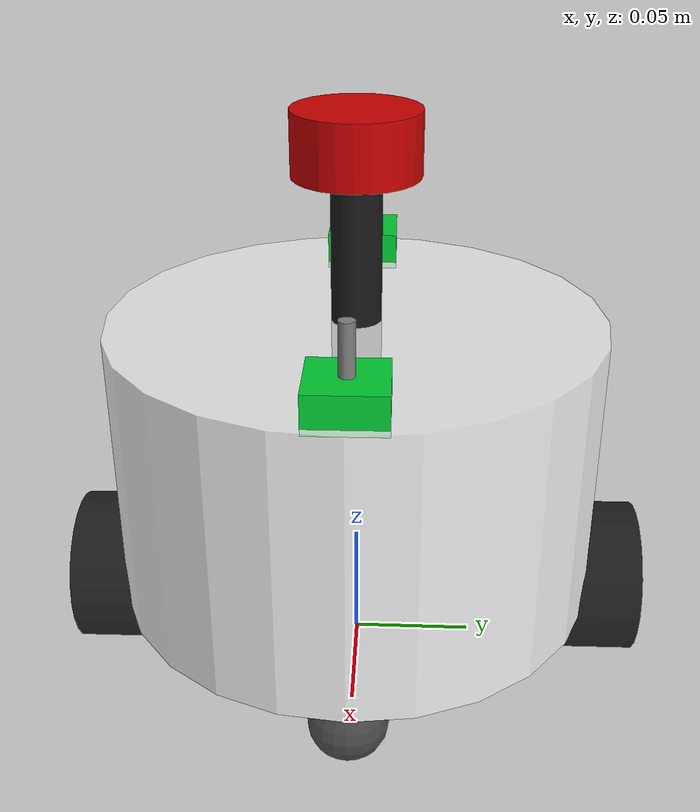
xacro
<?xml version="1.0"?>
<robot xmlns:xacro="http://www.ros.org/wiki/xacro" name="explorer_robot">

    <!-- Arguments for multi-robot support -->
    <xacro:arg name="robot_name" default="robot1"/>
    <xacro:arg name="robot_namespace" default="/robot1"/>

    <xacro:property name="robot_name" value="$(arg robot_name)"/>
    <xacro:property name="robot_namespace" value="$(arg robot_namespace)"/>
    <xacro:property name="prefix" value="${robot_name}/"/>

    <!-- Include all component xacros -->
    <xacro:include filename="$(find robot_description)/urdf/base.urdf.xacro"/>
    <xacro:include filename="$(find robot_description)/urdf/actuator/wheel.urdf.xacro"/>
    <xacro:include filename="$(find robot_description)/urdf/actuator/caster.urdf.xacro"/>
    <xacro:include filename="$(find robot_description)/urdf/sensor/imu.urdf.xacro"/>
    <xacro:include filename="$(find robot_description)/urdf/sensor/laser.urdf.xacro"/>
    <xacro:include filename="$(find robot_description)/urdf/sensor/uwb.urdf.xacro"/>
    <xacro:include filename="$(find robot_description)/urdf/plugins/gazebo_sensor_plugin.xacro"/>
    <xacro:include filename="$(find robot_description)/urdf/plugins/gazebo_control_plugin.xacro"/>

    <!-- Robot Base (cylinder body) -->
    <xacro:base_xacro prefix="${prefix}" length="0.12" radius="0.10"/>

    <!-- Drive Wheels -->
    <xacro:wheel_xacro prefix="${prefix}" wheel_name="left_wheel" xyz="0 0.10 -0.06"/>
    <xacro:wheel_xacro prefix="${prefix}" wheel_name="right_wheel" xyz="0 -0.10 -0.06"/>

    <!-- Caster Wheels -->
    <xacro:caster_xacro prefix="${prefix}" caster_name="front_caster" xyz="0.08 0.0 -0.076"/>
    <xacro:caster_xacro prefix="${prefix}" caster_name="back_caster" xyz="-0.08 0.0 -0.076"/>

    <!-- Sensors -->
    <xacro:imu_xacro prefix="${prefix}" xyz="0.0 0.0 0.02"/>
    <xacro:laser_xacro prefix="${prefix}" xyz="0.0 0.0 0.08"/>

    <!-- UWB Sensors - Two sensors for redundancy and better positioning -->
    <xacro:uwb_xacro prefix="${prefix}" uwb_name="uwb_front" xyz="0.08 0.0 0.065"/>
    <xacro:uwb_xacro prefix="${prefix}" uwb_name="uwb_back" xyz="-0.08 0.0 0.065"/>

    <!-- Gazebo Plugins -->
    <xacro:gazebo_sensor_plugin prefix="${prefix}" robot_namespace="${robot_namespace}"/>
    <xacro:gazebo_control_plugin prefix="${prefix}" robot_namespace="${robot_namespace}"/>

</robot>

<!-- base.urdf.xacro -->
<robot xmlns:xacro="http://www.ros.org/wiki/xacro">
    <xacro:include filename="$(find robot_description)/urdf/common_inertial.xacro"/>

    <xacro:macro name="base_xacro" params="prefix:='' length radius">
        <link name="${prefix}base_footprint" />

        <link name="${prefix}base_link">
            <visual>
                <origin xyz="0.0 0.0 0.0" rpy="0.0 0.0 0.0"/>
                <geometry>
                    <cylinder radius="${radius}" length="${length}"/>
                </geometry>
                <material name="${prefix}white">
                    <color rgba="1.0 1.0 1.0 0.8"/>
                </material>
            </visual>
            <collision>
                <origin xyz="0.0 0.0 0.0" rpy="0.0 0.0 0.0"/>
                <geometry>
                    <cylinder radius="${radius}" length="${length}"/>
                </geometry>
            </collision>
            <xacro:cylinder_inertia m="1.0" r="${radius}" h="${length}" />
        </link>

        <joint name="${prefix}base_joint" type="fixed">
            <origin xyz="0.0 0.0 ${length/2 + 0.032 - 0.001}" rpy="0.0 0.0 0.0"/>
            <parent link="${prefix}base_footprint"/>
            <child link="${prefix}base_link"/>
        </joint>

        <gazebo reference="${prefix}base_link">
            <material>Gazebo/White</material>
        </gazebo>
    </xacro:macro>
</robot>

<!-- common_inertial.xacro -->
<robot xmlns:xacro="http://ros.org/wiki/xacro">
    <!-- Box inertia macro -->
    <xacro:macro name="box_inertia" params="m w h d">
        <inertial>
            <mass value="${m}"/>
            <inertia ixx="${(m/12) * (h*h + d*d)}" ixy="0.0" ixz="0.0"
                     iyy="${(m/12) * (w*w + d*d)}" iyz="0.0"
                     izz="${(m/12) * (w*w + h*h)}"/>
        </inertial>
    </xacro:macro>

    <!-- Cylinder inertia macro -->
    <xacro:macro name="cylinder_inertia" params="m r h">
        <inertial>
            <mass value="${m}"/>
            <inertia ixx="${(m/12) * (3*r*r + h*h)}" ixy="0.0" ixz="0.0"
                     iyy="${(m/12) * (3*r*r + h*h)}" iyz="0.0"
                     izz="${(m/2) * (r*r)}"/>
        </inertial>
    </xacro:macro>

    <!-- Sphere inertia macro -->
    <xacro:macro name="sphere_inertia" params="m r">
        <inertial>
            <mass value="${m}"/>
            <inertia ixx="${(2/5)*m*(r*r)}" ixy="0.0" ixz="0.0"
                     iyy="${(2/5)*m*(r*r)}" iyz="0.0"
                     izz="${(2/5)*m*(r*r)}"/>
        </inertial>
    </xacro:macro>
</robot>

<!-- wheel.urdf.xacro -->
<robot xmlns:xacro="http://www.ros.org/wiki/xacro">
    <xacro:include filename="$(find robot_description)/urdf/common_inertial.xacro"/>

    <xacro:macro name="wheel_xacro" params="prefix:='' wheel_name xyz">
        <link name="${prefix}${wheel_name}_link">
            <visual>
                <origin xyz="0.0 0.0 0.0" rpy="1.57079 0.0 0.0"/>
                <geometry>
                    <cylinder radius="0.032" length="0.04"/>
                </geometry>
                <material name="${prefix}black">
                    <color rgba="0.0 0.0 0.0 0.8"/>
                </material>
            </visual>
            <collision>
                <origin xyz="0.0 0.0 0.0" rpy="1.57079 0.0 0.0"/>
                <geometry>
                    <cylinder radius="0.032" length="0.04"/>
                </geometry>
            </collision>
            <xacro:cylinder_inertia m="0.05" r="0.032" h="0.04"/>
        </link>

        <joint name="${prefix}${wheel_name}_joint" type="continuous">
            <parent link="${prefix}base_link"/>
            <child link="${prefix}${wheel_name}_link"/>
            <origin xyz="${xyz}" rpy="0.0 0.0 0.0"/>
            <axis xyz="0 1 0"/>
        </joint>

        <gazebo reference="${prefix}${wheel_name}_link">
            <mu1 value="20.0"/>
            <mu2 value="20.0"/>
            <kp value="1000000.0"/>
            <kd value="1.0"/>
            <material>Gazebo/Black</material>
        </gazebo>
    </xacro:macro>
</robot>

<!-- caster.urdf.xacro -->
<robot xmlns:xacro="http://www.ros.org/wiki/xacro">
    <xacro:include filename="$(find robot_description)/urdf/common_inertial.xacro"/>

    <xacro:macro name="caster_xacro" params="prefix:='' caster_name xyz">
        <link name="${prefix}${caster_name}_link">
            <visual>
                <origin xyz="0.0 0.0 0.0" rpy="0.0 0.0 0.0"/>
                <geometry>
                    <sphere radius="0.016"/>
                </geometry>
                <material name="${prefix}dark_grey">
                    <color rgba="0.2 0.2 0.2 0.8"/>
                </material>
            </visual>
            <collision>
                <origin xyz="0.0 0.0 0.0" rpy="0.0 0.0 0.0"/>
                <geometry>
                    <sphere radius="0.016"/>
                </geometry>
            </collision>
            <xacro:sphere_inertia m="0.05" r="0.016"/>
        </link>

        <joint name="${prefix}${caster_name}_joint" type="fixed">
            <parent link="${prefix}base_link"/>
            <child link="${prefix}${caster_name}_link"/>
            <origin xyz="${xyz}" rpy="0.0 0.0 0.0"/>
        </joint>

        <gazebo reference="${prefix}${caster_name}_link">
            <mu1 value="0.0"/>
            <mu2 value="0.0"/>
            <kp value="1000000.0"/>
            <kd value="1.0"/>
            <material>Gazebo/DarkGrey</material>
        </gazebo>
    </xacro:macro>
</robot>

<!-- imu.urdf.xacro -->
<robot xmlns:xacro="http://www.ros.org/wiki/xacro">
    <xacro:include filename="$(find robot_description)/urdf/common_inertial.xacro"/>

    <xacro:macro name="imu_xacro" params="prefix:='' xyz">
        <link name="${prefix}imu_link">
            <visual>
                <origin xyz="0.0 0.0 0.0" rpy="0.0 0.0 0.0"/>
                <geometry>
                    <box size="0.02 0.02 0.02"/>
                </geometry>
                <material name="${prefix}imu_blue">
                    <color rgba="0.0 0.0 0.8 0.8"/>
                </material>
            </visual>
            <collision>
                <origin xyz="0.0 0.0 0.0" rpy="0.0 0.0 0.0"/>
                <geometry>
                    <box size="0.02 0.02 0.02"/>
                </geometry>
            </collision>
            <xacro:box_inertia m="0.01" w="0.02" h="0.02" d="0.02"/>
        </link>

        <joint name="${prefix}imu_joint" type="fixed">
            <parent link="${prefix}base_link"/>
            <child link="${prefix}imu_link"/>
            <origin xyz="${xyz}" rpy="0.0 0.0 0.0"/>
        </joint>

        <gazebo reference="${prefix}imu_link">
            <material>Gazebo/Blue</material>
        </gazebo>
    </xacro:macro>
</robot>

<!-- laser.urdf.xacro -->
<robot xmlns:xacro="http://www.ros.org/wiki/xacro">
    <xacro:include filename="$(find robot_description)/urdf/common_inertial.xacro"/>

    <xacro:macro name="laser_xacro" params="prefix:='' xyz">
        <link name="${prefix}laser_cylinder_link">
            <visual>
                <origin xyz="0.0 0.0 0.0" rpy="0.0 0.0 0.0"/>
                <geometry>
                    <cylinder radius="0.01" length="0.08"/>
                </geometry>
                <material name="${prefix}laser_black">
                    <color rgba="0.1 0.1 0.1 1.0"/>
                </material>
            </visual>
            <collision>
                <origin xyz="0.0 0.0 0.0" rpy="0.0 0.0 0.0"/>
                <geometry>
                    <cylinder radius="0.01" length="0.08"/>
                </geometry>
            </collision>
            <xacro:cylinder_inertia m="0.02" r="0.01" h="0.08"/>
        </link>

        <link name="${prefix}laser_link">
            <visual>
                <origin xyz="0.0 0.0 0.0" rpy="0.0 0.0 0.0"/>
                <geometry>
                    <cylinder radius="0.025" length="0.025"/>
                </geometry>
                <material name="${prefix}laser_red">
                    <color rgba="0.8 0.0 0.0 1.0"/>
                </material>
            </visual>
            <collision>
                <origin xyz="0.0 0.0 0.0" rpy="0.0 0.0 0.0"/>
                <geometry>
                    <cylinder radius="0.025" length="0.025"/>
                </geometry>
            </collision>
            <xacro:cylinder_inertia m="0.05" r="0.025" h="0.025"/>
        </link>

        <joint name="${prefix}laser_joint" type="fixed">
            <parent link="${prefix}laser_cylinder_link"/>
            <child link="${prefix}laser_link"/>
            <origin xyz="0.0 0.0 0.05" rpy="0.0 0.0 0.0"/>
        </joint>

        <joint name="${prefix}laser_cylinder_joint" type="fixed">
            <parent link="${prefix}base_link"/>
            <child link="${prefix}laser_cylinder_link"/>
            <origin xyz="${xyz}" rpy="0.0 0.0 0.0"/>
        </joint>

        <gazebo reference="${prefix}laser_cylinder_link">
            <material>Gazebo/Black</material>
        </gazebo>
        <gazebo reference="${prefix}laser_link">
            <material>Gazebo/Red</material>
        </gazebo>
    </xacro:macro>
</robot>

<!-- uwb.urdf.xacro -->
<robot xmlns:xacro="http://www.ros.org/wiki/xacro">
    <xacro:include filename="$(find robot_description)/urdf/common_inertial.xacro"/>

    <!-- UWB (Ultra-Wideband) Sensor for inter-robot ranging -->
    <xacro:macro name="uwb_xacro" params="prefix:='' uwb_name xyz">
        <link name="${prefix}${uwb_name}_link">
            <visual>
                <origin xyz="0.0 0.0 0.0" rpy="0.0 0.0 0.0"/>
                <geometry>
                    <box size="0.03 0.03 0.015"/>
                </geometry>
                <material name="${prefix}uwb_green">
                    <color rgba="0.0 0.8 0.2 1.0"/>
                </material>
            </visual>
            <collision>
                <origin xyz="0.0 0.0 0.0" rpy="0.0 0.0 0.0"/>
                <geometry>
                    <box size="0.03 0.03 0.015"/>
                </geometry>
            </collision>
            <xacro:box_inertia m="0.01" w="0.03" h="0.03" d="0.015"/>
        </link>

        <!-- UWB antenna visual -->
        <link name="${prefix}${uwb_name}_antenna_link">
            <visual>
                <origin xyz="0.0 0.0 0.0" rpy="0.0 0.0 0.0"/>
                <geometry>
                    <cylinder radius="0.003" length="0.02"/>
                </geometry>
                <material name="${prefix}uwb_antenna">
                    <color rgba="0.5 0.5 0.5 1.0"/>
                </material>
            </visual>
            <collision>
                <origin xyz="0.0 0.0 0.0" rpy="0.0 0.0 0.0"/>
                <geometry>
                    <cylinder radius="0.003" length="0.02"/>
                </geometry>
            </collision>
            <xacro:cylinder_inertia m="0.001" r="0.003" h="0.02"/>
        </link>

        <joint name="${prefix}${uwb_name}_joint" type="fixed">
            <parent link="${prefix}base_link"/>
            <child link="${prefix}${uwb_name}_link"/>
            <origin xyz="${xyz}" rpy="0.0 0.0 0.0"/>
        </joint>

        <joint name="${prefix}${uwb_name}_antenna_joint" type="fixed">
            <parent link="${prefix}${uwb_name}_link"/>
            <child link="${prefix}${uwb_name}_antenna_link"/>
            <origin xyz="0.0 0.0 0.0175" rpy="0.0 0.0 0.0"/>
        </joint>

        <gazebo reference="${prefix}${uwb_name}_link">
            <material>Gazebo/Green</material>
        </gazebo>
        <gazebo reference="${prefix}${uwb_name}_antenna_link">
            <material>Gazebo/Grey</material>
        </gazebo>
    </xacro:macro>
</robot>
